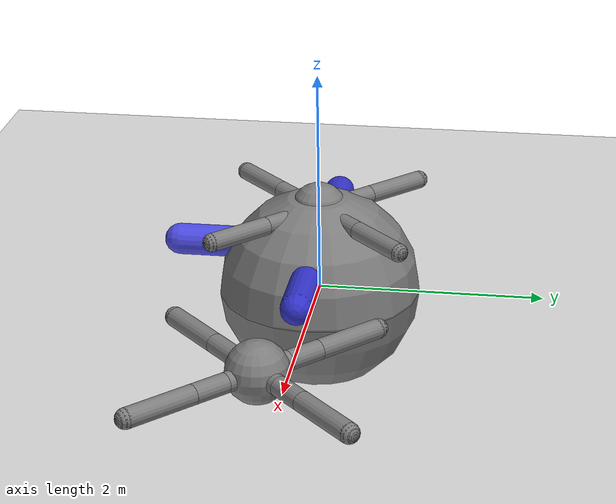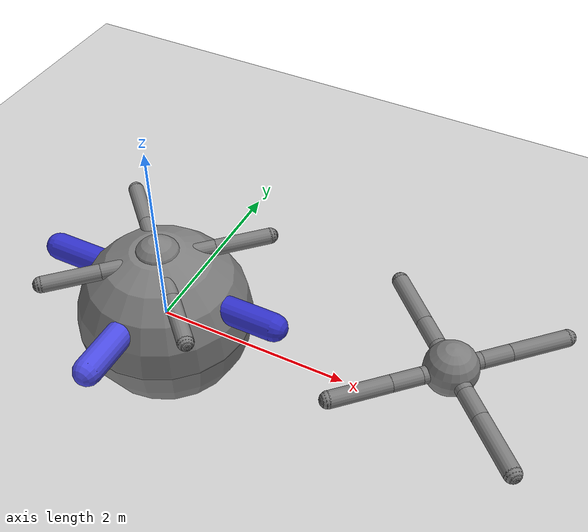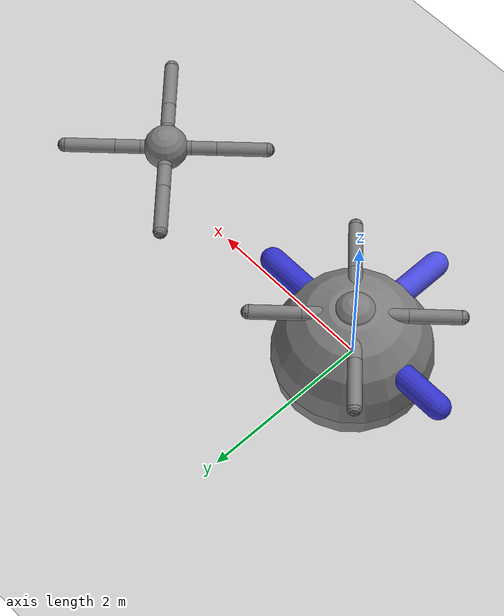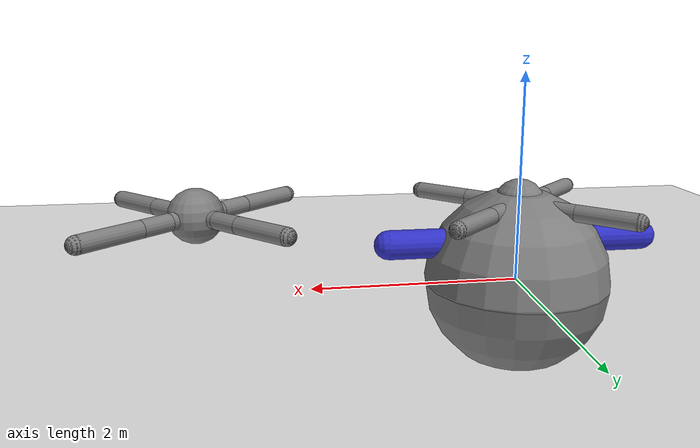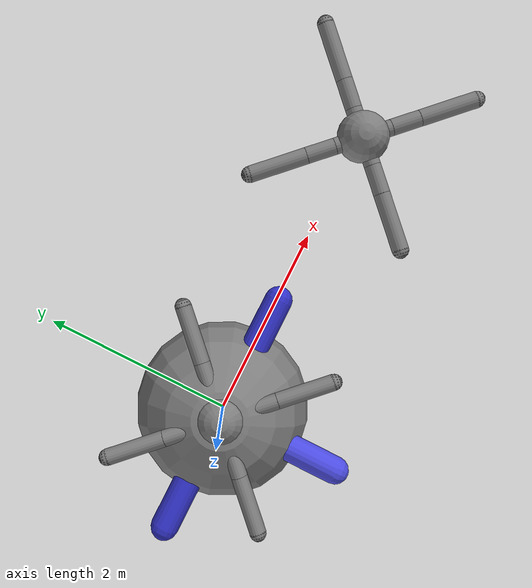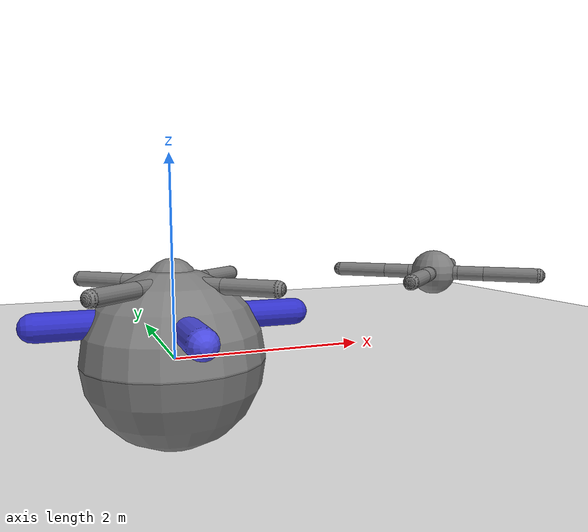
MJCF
<mujoco model="ant_pair_tload">
  <compiler angle="degree" coordinate="local" inertiafromgeom="true"/>
  <option timestep="0.01" iterations="4" />
  <custom>
    <!-- brax custom params -->
    <!-- init_qpos: ant_a(15) + ant_b(15) + tload(3: slidex,slidey,hingez) + target(2) = 35 -->
    <numeric data="0.0 0.0 0.55 1.0 0.0 0.0 0.0 0.0 1.0 0.0 -1.0 0.0 -1.0 0.0 1.0 3.0 0.0 0.55 1.0 0.0 0.0 0.0 0.0 1.0 0.0 -1.0 0.0 -1.0 0.0 1.0 0.0 0.0 0.0 0.0 0.0" name="init_qpos"/>
    <numeric data="2000" name="constraint_limit_stiffness"/>
    <numeric data="10000" name="constraint_stiffness"/>
    <numeric data="10" name="constraint_ang_damping"/>
    <numeric data="20" name="constraint_vel_damping"/>
    <numeric data="0.5" name="joint_scale_pos"/>
    <numeric data="0.2" name="joint_scale_ang"/>
    <numeric data="-1" name="ang_damping"/>
    <numeric data="-1" name="vel_damping"/>  <!-- REAL friction fix (Brax PR #509). Negative = damping. -->
    <numeric data="1" name="spring_mass_scale"/>
    <numeric data="1" name="spring_inertia_scale"/>
    <numeric data="15" name="solver_maxls"/>
  </custom>
  <default>
    <joint armature="1" damping="1" limited="true"/>
    <geom contype="0" conaffinity="0" condim="3" density="5.0" friction="1 0.5 0.5"/>
  </default>
  <asset>
    <texture builtin="gradient" height="100" rgb1="1 1 1" rgb2="0 0 0" type="skybox" width="100"/>
    <texture builtin="flat" height="1278" mark="cross" markrgb="1 1 1" name="texgeom" random="0.01" rgb1="0.8 0.6 0.4" rgb2="0.8 0.6 0.4" type="cube" width="127"/>
    <texture builtin="checker" height="100" name="texplane" rgb1="0 0 0" rgb2="0.8 0.8 0.8" type="2d" width="100"/>
    <material name="MatPlane" reflectance="0.5" shininess="1" specular="1" texrepeat="60 60" texture="texplane"/>
    <material name="geom" texture="texgeom" texuniform="true"/>
  </asset>
  <worldbody>
    <light cutoff="100" diffuse="1 1 1" dir="-0 0 -1.3" directional="true" exponent="1" pos="0 0 1.3" specular=".1 .1 .1"/>
    <geom conaffinity="1" condim="3" material="MatPlane" name="floor" pos="0 0 0" size="40 40 40" type="plane"/>

    <!-- ===== Ant A ===== -->
    <body name="torso_a" pos="0 0 0.75">
      <camera name="track" mode="trackcom" pos="0 0 14" xyaxes="1 0 0 0 1 0"/>
      <geom name="a_torso_geom" pos="0 0 0" size="0.25" type="sphere" conaffinity="1"/>
      <joint armature="0" damping="0" limited="false" margin="0.01" name="a_root" pos="0 0 0" type="free"/>
      <body name="a_front_left_leg" pos="0 0 0">
        <geom fromto="0.0 0.0 0.0 0.2 0.2 0.0" name="a_aux_1_geom" size="0.08" type="capsule"/>
        <body name="a_aux_1" pos="0.2 0.2 0">
          <joint axis="0 0 1" name="a_hip_1" pos="0.0 0.0 0.0" range="-30 30" type="hinge"/>
          <geom fromto="0.0 0.0 0.0 0.2 0.2 0.0" name="a_left_leg_geom" size="0.08" type="capsule"/>
          <body pos="0.2 0.2 0">
            <joint axis="-1 1 0" name="a_ankle_1" pos="0.0 0.0 0.0" range="30 70" type="hinge"/>
            <geom fromto="0.0 0.0 0.0 0.4 0.4 0.0" name="a_left_ankle_geom" size="0.08" type="capsule"/>
            <geom name="a_left_foot_geom" contype="1" pos="0.4 0.4 0" size="0.08" type="sphere" mass="0" conaffinity="1"/>
          </body>
        </body>
      </body>
      <body name="a_front_right_leg" pos="0 0 0">
        <geom fromto="0.0 0.0 0.0 -0.2 0.2 0.0" name="a_aux_2_geom" size="0.08" type="capsule"/>
        <body name="a_aux_2" pos="-0.2 0.2 0">
          <joint axis="0 0 1" name="a_hip_2" pos="0.0 0.0 0.0" range="-30 30" type="hinge"/>
          <geom fromto="0.0 0.0 0.0 -0.2 0.2 0.0" name="a_right_leg_geom" size="0.08" type="capsule"/>
          <body pos="-0.2 0.2 0">
            <joint axis="1 1 0" name="a_ankle_2" pos="0.0 0.0 0.0" range="-70 -30" type="hinge"/>
            <geom fromto="0.0 0.0 0.0 -0.4 0.4 0.0" name="a_right_ankle_geom" size="0.08" type="capsule"/>
            <geom name="a_right_foot_geom" contype="1" pos="-0.4 0.4 0" size="0.08" type="sphere" mass="0" conaffinity="1"/>
          </body>
        </body>
      </body>
      <body name="a_back_leg" pos="0 0 0">
        <geom fromto="0.0 0.0 0.0 -0.2 -0.2 0.0" name="a_aux_3_geom" size="0.08" type="capsule"/>
        <body name="a_aux_3" pos="-0.2 -0.2 0">
          <joint axis="0 0 1" name="a_hip_3" pos="0.0 0.0 0.0" range="-30 30" type="hinge"/>
          <geom fromto="0.0 0.0 0.0 -0.2 -0.2 0.0" name="a_back_leg_geom" size="0.08" type="capsule"/>
          <body pos="-0.2 -0.2 0">
            <joint axis="-1 1 0" name="a_ankle_3" pos="0.0 0.0 0.0" range="-70 -30" type="hinge"/>
            <geom fromto="0.0 0.0 0.0 -0.4 -0.4 0.0" name="a_third_ankle_geom" size="0.08" type="capsule"/>
            <geom name="a_third_foot_geom" contype="1" pos="-0.4 -0.4 0" size="0.08" type="sphere" mass="0" conaffinity="1"/>
          </body>
        </body>
      </body>
      <body name="a_right_back_leg" pos="0 0 0">
        <geom fromto="0.0 0.0 0.0 0.2 -0.2 0.0" name="a_aux_4_geom" size="0.08" type="capsule"/>
        <body name="a_aux_4" pos="0.2 -0.2 0">
          <joint axis="0 0 1" name="a_hip_4" pos="0.0 0.0 0.0" range="-30 30" type="hinge"/>
          <geom fromto="0.0 0.0 0.0 0.2 -0.2 0.0" name="a_rightback_leg_geom" size="0.08" type="capsule"/>
          <body pos="0.2 -0.2 0">
            <joint axis="1 1 0" name="a_ankle_4" pos="0.0 0.0 0.0" range="30 70" type="hinge"/>
            <geom fromto="0.0 0.0 0.0 0.4 -0.4 0.0" name="a_fourth_ankle_geom" size="0.08" type="capsule"/>
            <geom name="a_fourth_foot_geom" contype="1" pos="0.4 -0.4 0" size="0.08" type="sphere" mass="0" conaffinity="1"/>
          </body>
        </body>
      </body>
    </body>

    <!-- ===== Ant B ===== -->
    <body name="torso_b" pos="3 0 0.75">
      <geom name="b_torso_geom" pos="0 0 0" size="0.25" type="sphere" conaffinity="1"/>
      <joint armature="0" damping="0" limited="false" margin="0.01" name="b_root" pos="0 0 0" type="free"/>
      <body name="b_front_left_leg" pos="0 0 0">
        <geom fromto="0.0 0.0 0.0 0.2 0.2 0.0" name="b_aux_1_geom" size="0.08" type="capsule"/>
        <body name="b_aux_1" pos="0.2 0.2 0">
          <joint axis="0 0 1" name="b_hip_1" pos="0.0 0.0 0.0" range="-30 30" type="hinge"/>
          <geom fromto="0.0 0.0 0.0 0.2 0.2 0.0" name="b_left_leg_geom" size="0.08" type="capsule"/>
          <body pos="0.2 0.2 0">
            <joint axis="-1 1 0" name="b_ankle_1" pos="0.0 0.0 0.0" range="30 70" type="hinge"/>
            <geom fromto="0.0 0.0 0.0 0.4 0.4 0.0" name="b_left_ankle_geom" size="0.08" type="capsule"/>
            <geom name="b_left_foot_geom" contype="1" pos="0.4 0.4 0" size="0.08" type="sphere" mass="0" conaffinity="1"/>
          </body>
        </body>
      </body>
      <body name="b_front_right_leg" pos="0 0 0">
        <geom fromto="0.0 0.0 0.0 -0.2 0.2 0.0" name="b_aux_2_geom" size="0.08" type="capsule"/>
        <body name="b_aux_2" pos="-0.2 0.2 0">
          <joint axis="0 0 1" name="b_hip_2" pos="0.0 0.0 0.0" range="-30 30" type="hinge"/>
          <geom fromto="0.0 0.0 0.0 -0.2 0.2 0.0" name="b_right_leg_geom" size="0.08" type="capsule"/>
          <body pos="-0.2 0.2 0">
            <joint axis="1 1 0" name="b_ankle_2" pos="0.0 0.0 0.0" range="-70 -30" type="hinge"/>
            <geom fromto="0.0 0.0 0.0 -0.4 0.4 0.0" name="b_right_ankle_geom" size="0.08" type="capsule"/>
            <geom name="b_right_foot_geom" contype="1" pos="-0.4 0.4 0" size="0.08" type="sphere" mass="0" conaffinity="1"/>
          </body>
        </body>
      </body>
      <body name="b_back_leg" pos="0 0 0">
        <geom fromto="0.0 0.0 0.0 -0.2 -0.2 0.0" name="b_aux_3_geom" size="0.08" type="capsule"/>
        <body name="b_aux_3" pos="-0.2 -0.2 0">
          <joint axis="0 0 1" name="b_hip_3" pos="0.0 0.0 0.0" range="-30 30" type="hinge"/>
          <geom fromto="0.0 0.0 0.0 -0.2 -0.2 0.0" name="b_back_leg_geom" size="0.08" type="capsule"/>
          <body pos="-0.2 -0.2 0">
            <joint axis="-1 1 0" name="b_ankle_3" pos="0.0 0.0 0.0" range="-70 -30" type="hinge"/>
            <geom fromto="0.0 0.0 0.0 -0.4 -0.4 0.0" name="b_third_ankle_geom" size="0.08" type="capsule"/>
            <geom name="b_third_foot_geom" contype="1" pos="-0.4 -0.4 0" size="0.08" type="sphere" mass="0" conaffinity="1"/>
          </body>
        </body>
      </body>
      <body name="b_right_back_leg" pos="0 0 0">
        <geom fromto="0.0 0.0 0.0 0.2 -0.2 0.0" name="b_aux_4_geom" size="0.08" type="capsule"/>
        <body name="b_aux_4" pos="0.2 -0.2 0">
          <joint axis="0 0 1" name="b_hip_4" pos="0.0 0.0 0.0" range="-30 30" type="hinge"/>
          <geom fromto="0.0 0.0 0.0 0.2 -0.2 0.0" name="b_rightback_leg_geom" size="0.08" type="capsule"/>
          <body pos="0.2 -0.2 0">
            <joint axis="1 1 0" name="b_ankle_4" pos="0.0 0.0 0.0" range="30 70" type="hinge"/>
            <geom fromto="0.0 0.0 0.0 0.4 -0.4 0.0" name="b_fourth_ankle_geom" size="0.08" type="capsule"/>
            <geom name="b_fourth_foot_geom" contype="1" pos="0.4 -0.4 0" size="0.08" type="sphere" mass="0" conaffinity="1"/>
          </body>
        </body>
      </body>
    </body>

    <!-- T-shaped load: 70% of previous size for solvable slit clearance -->
    <!-- Crossbar: 2.52 units (70% of 3.6), stem: 1.12 units (70% of 1.6) -->
    <!-- Slit clearance: ~1.1m (was ~0.0m) — enough for accidental discovery -->
    <body name="object" pos="0.0 0.0 0.4">
      <geom name="tc0" type="capsule" fromto="-1.26 0 0 1.26 0 0" size="0.14"
            rgba="0.2 0.2 0.8 1" density="3.0" contype="1" conaffinity="1"/>
      <geom name="ts0" type="capsule" fromto="0 -0.14 0 0 -1.26 0" size="0.14"
            rgba="0.3 0.3 0.9 1" density="3.0" contype="1" conaffinity="1"/>
      <joint name="obj_slidex" type="slide" pos="0 0 0" axis="1 0 0" range="-50 50"/>
      <joint name="obj_slidey" type="slide" pos="0 0 0" axis="0 1 0" range="-50 50"/>
      <joint name="obj_hingez" type="hinge" pos="0 0 0" axis="0 0 1" limited="false"/>
    </body>

    <!-- Maze walls will be injected here by Python code -->

    <!-- Target -->
    <body name="target" pos="0 0 0.01">
        <joint armature="0" axis="1 0 0" damping="0" limited="true" name="target_x" pos="0 0 0" range="-50 50" stiffness="0" type="slide"/>
        <joint armature="0" axis="0 1 0" damping="0" limited="true" name="target_y" pos="0 0 0" range="-50 50" stiffness="0" type="slide"/>
        <geom conaffinity="0" contype="0" name="target" pos="0 0 0" size=".9" type="sphere" mass="1.0"/>
    </body>
  </worldbody>
  <actuator>
    <!-- Ant A actuators -->
    <motor ctrllimited="true" ctrlrange="-1.0 1.0" joint="a_hip_4" gear="150"/>
    <motor ctrllimited="true" ctrlrange="-1.0 1.0" joint="a_ankle_4" gear="150"/>
    <motor ctrllimited="true" ctrlrange="-1.0 1.0" joint="a_hip_1" gear="150"/>
    <motor ctrllimited="true" ctrlrange="-1.0 1.0" joint="a_ankle_1" gear="150"/>
    <motor ctrllimited="true" ctrlrange="-1.0 1.0" joint="a_hip_2" gear="150"/>
    <motor ctrllimited="true" ctrlrange="-1.0 1.0" joint="a_ankle_2" gear="150"/>
    <motor ctrllimited="true" ctrlrange="-1.0 1.0" joint="a_hip_3" gear="150"/>
    <motor ctrllimited="true" ctrlrange="-1.0 1.0" joint="a_ankle_3" gear="150"/>
    <!-- Ant B actuators -->
    <motor ctrllimited="true" ctrlrange="-1.0 1.0" joint="b_hip_4" gear="150"/>
    <motor ctrllimited="true" ctrlrange="-1.0 1.0" joint="b_ankle_4" gear="150"/>
    <motor ctrllimited="true" ctrlrange="-1.0 1.0" joint="b_hip_1" gear="150"/>
    <motor ctrllimited="true" ctrlrange="-1.0 1.0" joint="b_ankle_1" gear="150"/>
    <motor ctrllimited="true" ctrlrange="-1.0 1.0" joint="b_hip_2" gear="150"/>
    <motor ctrllimited="true" ctrlrange="-1.0 1.0" joint="b_ankle_2" gear="150"/>
    <motor ctrllimited="true" ctrlrange="-1.0 1.0" joint="b_hip_3" gear="150"/>
    <motor ctrllimited="true" ctrlrange="-1.0 1.0" joint="b_ankle_3" gear="150"/>
  </actuator>
</mujoco>
